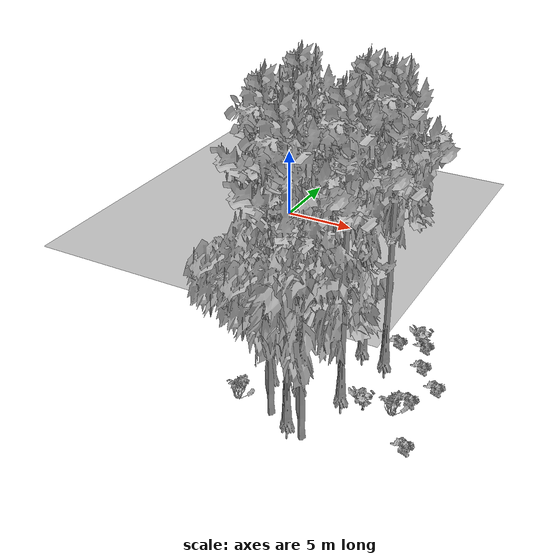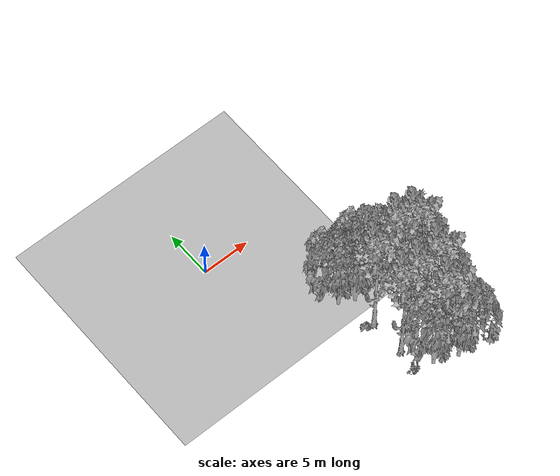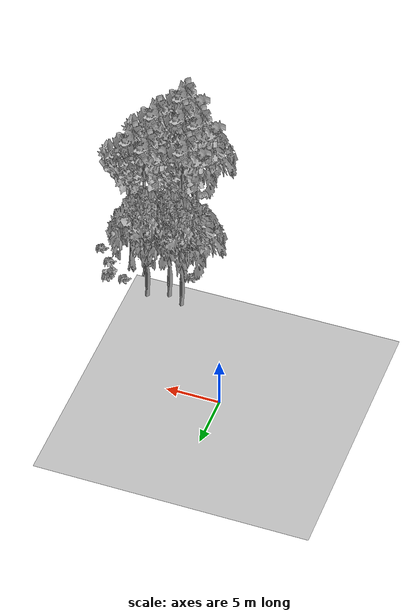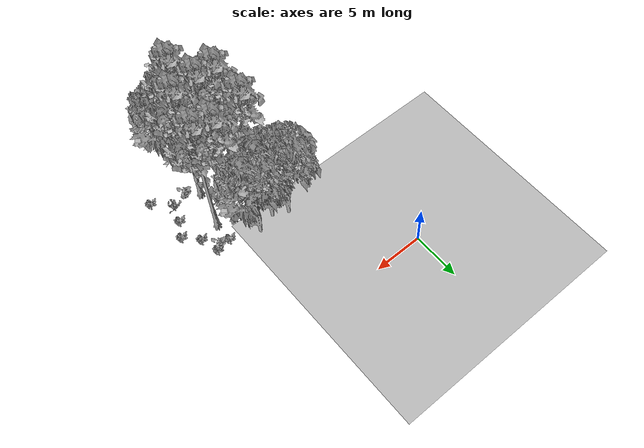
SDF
<sdf version="1.7">
 <world name="default">
  <model name="ground_plane">
   <static>1</static>
   <link name="link">
    <collision name="collision">
     <pose>-50 0 0 0 -0 0</pose>
     <geometry><plane><normal>0 0 1</normal><size>80 80</size></plane></geometry>
     <surface><contact><ode><min_depth>0.01</min_depth><max_vel>0</max_vel></ode></contact></surface>
    </collision>
    <visual name="grass">
     <cast_shadows>0</cast_shadows>
     <geometry>
      <mesh>
       <scale>0.46714285714285714 0.46714285714285714 0.1</scale>
       <uri>file://grass_plane/meshes/grass_plane.dae</uri>
      </mesh>
     </geometry>
    </visual>
   </link>
  </model>
  <model name="Tree 16">
   <static>1</static>
   <pose>12.687165125672806 -17.66942344389374 0 1.57079 -0 0</pose>
   <link name="link">
    <collision name="collision">
     <geometry><mesh><scale>3.5 5 3.5</scale><uri>model://tree_9/meshes/tree_9.obj</uri></mesh></geometry>
    </collision>
    <visual name="visual">
     <geometry><mesh><scale>3.5 5 3.5</scale><uri>model://tree_9/meshes/tree_9.obj</uri></mesh></geometry>
    </visual>
   </link>
  </model>
  <model name="Tree 209">
   <static>1</static>
   <pose>11.93722008984237 -13.229632167706498 0 1.57079 -0 0</pose>
   <link name="link">
    <collision name="collision">
     <geometry><mesh><scale>3.5 5 3.5</scale><uri>model://tree_9/meshes/tree_9.obj</uri></mesh></geometry>
    </collision>
    <visual name="visual">
     <geometry><mesh><scale>3.5 5 3.5</scale><uri>model://tree_9/meshes/tree_9.obj</uri></mesh></geometry>
    </visual>
   </link>
  </model>
  <model name="Tree 249">
   <static>1</static>
   <pose>10.661491786678525 -10.463675174857539 0 1.57079 -0 0</pose>
   <link name="link">
    <collision name="collision">
     <geometry><mesh><scale>3.5 5 3.5</scale><uri>model://tree_2/meshes/tree_2.obj</uri></mesh></geometry>
    </collision>
    <visual name="visual">
     <geometry><mesh><scale>3.5 5 3.5</scale><uri>model://tree_2/meshes/tree_2.obj</uri></mesh></geometry>
    </visual>
   </link>
  </model>
  <model name="Tree 303">
   <static>1</static>
   <pose>13.516086859390178 -13.722265868476207 0 1.57079 -0 0</pose>
   <link name="link">
    <collision name="collision">
     <geometry><mesh><scale>3.5 5 3.5</scale><uri>model://tree_9/meshes/tree_9.obj</uri></mesh></geometry>
    </collision>
    <visual name="visual">
     <geometry><mesh><scale>3.5 5 3.5</scale><uri>model://tree_9/meshes/tree_9.obj</uri></mesh></geometry>
    </visual>
   </link>
  </model>
  <model name="Tree 325">
   <static>1</static>
   <pose>8.557899977431752 -14.093027241038616 0 1.57079 -0 0</pose>
   <link name="link">
    <collision name="collision">
     <geometry><mesh><scale>3.5 5 3.5</scale><uri>model://tree_9/meshes/tree_9.obj</uri></mesh></geometry>
    </collision>
    <visual name="visual">
     <geometry><mesh><scale>3.5 5 3.5</scale><uri>model://tree_9/meshes/tree_9.obj</uri></mesh></geometry>
    </visual>
   </link>
  </model>
  <model name="Tree 330">
   <static>1</static>
   <pose>7.306173403852831 -10.393064839520338 0 1.57079 -0 0</pose>
   <link name="link">
    <collision name="collision">
     <geometry><mesh><scale>3.5 5 3.5</scale><uri>model://tree_2/meshes/tree_2.obj</uri></mesh></geometry>
    </collision>
    <visual name="visual">
     <geometry><mesh><scale>3.5 5 3.5</scale><uri>model://tree_2/meshes/tree_2.obj</uri></mesh></geometry>
    </visual>
   </link>
  </model>
  <model name="Tree 353">
   <static>1</static>
   <pose>11.124180043707774 -20.773725358883112 0 1.57079 -0 0</pose>
   <link name="link">
    <collision name="collision">
     <geometry><mesh><scale>3.5 5 3.5</scale><uri>model://tree_9/meshes/tree_9.obj</uri></mesh></geometry>
    </collision>
    <visual name="visual">
     <geometry><mesh><scale>3.5 5 3.5</scale><uri>model://tree_9/meshes/tree_9.obj</uri></mesh></geometry>
    </visual>
   </link>
  </model>
  <model name="Tree 378">
   <static>1</static>
   <pose>9.995095583472008 -20.60422796896428 0 1.57079 -0 0</pose>
   <link name="link">
    <collision name="collision">
     <geometry><mesh><scale>3.5 5 3.5</scale><uri>model://tree_2/meshes/tree_2.obj</uri></mesh></geometry>
    </collision>
    <visual name="visual">
     <geometry><mesh><scale>3.5 5 3.5</scale><uri>model://tree_2/meshes/tree_2.obj</uri></mesh></geometry>
    </visual>
   </link>
  </model>
  <model name="Tree 511">
   <static>1</static>
   <pose>8.747850615792963 -11.097648183531355 0 1.57079 -0 0</pose>
   <link name="link">
    <collision name="collision">
     <geometry><mesh><scale>3.5 5 3.5</scale><uri>model://tree_2/meshes/tree_2.obj</uri></mesh></geometry>
    </collision>
    <visual name="visual">
     <geometry><mesh><scale>3.5 5 3.5</scale><uri>model://tree_2/meshes/tree_2.obj</uri></mesh></geometry>
    </visual>
   </link>
  </model>
  <model name="Tree 529">
   <static>1</static>
   <pose>10.308509868735577 -17.909547188869183 0 1.57079 -0 0</pose>
   <link name="link">
    <collision name="collision">
     <geometry><mesh><scale>3.5 5 3.5</scale><uri>model://tree_9/meshes/tree_9.obj</uri></mesh></geometry>
    </collision>
    <visual name="visual">
     <geometry><mesh><scale>3.5 5 3.5</scale><uri>model://tree_9/meshes/tree_9.obj</uri></mesh></geometry>
    </visual>
   </link>
  </model>
  <model name="Tree 578">
   <static>1</static>
   <pose>8.575050120613845 -17.823424903198728 0 1.57079 -0 0</pose>
   <link name="link">
    <collision name="collision">
     <geometry><mesh><scale>3.5 5 3.5</scale><uri>model://tree_9/meshes/tree_9.obj</uri></mesh></geometry>
    </collision>
    <visual name="visual">
     <geometry><mesh><scale>3.5 5 3.5</scale><uri>model://tree_9/meshes/tree_9.obj</uri></mesh></geometry>
    </visual>
   </link>
  </model>
  <model name="Tree 619">
   <static>1</static>
   <pose>12.252668709215534 -21.530637288971455 0 1.57079 -0 0</pose>
   <link name="link">
    <collision name="collision">
     <geometry><mesh><scale>3.5 5 3.5</scale><uri>model://tree_2/meshes/tree_2.obj</uri></mesh></geometry>
    </collision>
    <visual name="visual">
     <geometry><mesh><scale>3.5 5 3.5</scale><uri>model://tree_2/meshes/tree_2.obj</uri></mesh></geometry>
    </visual>
   </link>
  </model>
  <model name="Bush 132">
   <static>1</static>
   <pose>7.6484770296041376 -13.932969627965448 0 1.57079 -0 0</pose>
   <link name="link">
    <collision name="collision">
     <geometry><mesh><scale>2 2 2</scale><uri>model://bush_2/meshes/bush_2.obj</uri></mesh></geometry>
     <surface><contact><collide_without_contact>false</collide_without_contact></contact></surface>
    </collision>
    <visual name="visual">
     <geometry><mesh><scale>2 2 2</scale><uri>model://bush_2/meshes/bush_2.obj</uri></mesh></geometry>
    </visual>
   </link>
  </model>
  <model name="Bush 201">
   <static>1</static>
   <pose>16.883609555556752 -14.732224660559822 0 1.57079 -0 0</pose>
   <link name="link">
    <collision name="collision">
     <geometry><mesh><scale>2 2 2</scale><uri>model://bush_2/meshes/bush_2.obj</uri></mesh></geometry>
     <surface><contact><collide_without_contact>false</collide_without_contact></contact></surface>
    </collision>
    <visual name="visual">
     <geometry><mesh><scale>2 2 2</scale><uri>model://bush_2/meshes/bush_2.obj</uri></mesh></geometry>
    </visual>
   </link>
  </model>
  <model name="Bush 245">
   <static>1</static>
   <pose>7.9682623417914655 -20.330235159011387 0 1.57079 -0 0</pose>
   <link name="link">
    <collision name="collision">
     <geometry><mesh><scale>2 2 2</scale><uri>model://bush_4/meshes/bush_4.obj</uri></mesh></geometry>
     <surface><contact><collide_without_contact>false</collide_without_contact></contact></surface>
    </collision>
    <visual name="visual">
     <geometry><mesh><scale>2 2 2</scale><uri>model://bush_4/meshes/bush_4.obj</uri></mesh></geometry>
    </visual>
   </link>
  </model>
  <model name="Bush 248">
   <static>1</static>
   <pose>13.481307568456131 -11.65434177451301 0 1.57079 -0 0</pose>
   <link name="link">
    <collision name="collision">
     <geometry><mesh><scale>2 2 2</scale><uri>model://bush_2/meshes/bush_2.obj</uri></mesh></geometry>
     <surface><contact><collide_without_contact>false</collide_without_contact></contact></surface>
    </collision>
    <visual name="visual">
     <geometry><mesh><scale>2 2 2</scale><uri>model://bush_2/meshes/bush_2.obj</uri></mesh></geometry>
    </visual>
   </link>
  </model>
  <model name="Bush 421">
   <static>1</static>
   <pose>14.152160223225728 -18.094039722709816 0 1.57079 -0 0</pose>
   <link name="link">
    <collision name="collision">
     <geometry><mesh><scale>2 2 2</scale><uri>model://bush_0/meshes/bush_0.obj</uri></mesh></geometry>
     <surface><contact><collide_without_contact>false</collide_without_contact></contact></surface>
    </collision>
    <visual name="visual">
     <geometry><mesh><scale>2 2 2</scale><uri>model://bush_0/meshes/bush_0.obj</uri></mesh></geometry>
    </visual>
   </link>
  </model>
  <model name="Bush 497">
   <static>1</static>
   <pose>15.628937277438823 -17.738959666961893 0 1.57079 -0 0</pose>
   <link name="link">
    <collision name="collision">
     <geometry><mesh><scale>2 2 2</scale><uri>model://bush_4/meshes/bush_4.obj</uri></mesh></geometry>
     <surface><contact><collide_without_contact>false</collide_without_contact></contact></surface>
    </collision>
    <visual name="visual">
     <geometry><mesh><scale>2 2 2</scale><uri>model://bush_4/meshes/bush_4.obj</uri></mesh></geometry>
    </visual>
   </link>
  </model>
  <model name="Bush 528">
   <static>1</static>
   <pose>14.858914960334289 -11.34703978647699 0 1.57079 -0 0</pose>
   <link name="link">
    <collision name="collision">
     <geometry><mesh><scale>2 2 2</scale><uri>model://bush_0/meshes/bush_0.obj</uri></mesh></geometry>
     <surface><contact><collide_without_contact>false</collide_without_contact></contact></surface>
    </collision>
    <visual name="visual">
     <geometry><mesh><scale>2 2 2</scale><uri>model://bush_0/meshes/bush_0.obj</uri></mesh></geometry>
    </visual>
   </link>
  </model>
  <model name="Bush 561">
   <static>1</static>
   <pose>16.009205767746273 -16.349491378137753 0 1.57079 -0 0</pose>
   <link name="link">
    <collision name="collision">
     <geometry><mesh><scale>2 2 2</scale><uri>model://bush_2/meshes/bush_2.obj</uri></mesh></geometry>
     <surface><contact><collide_without_contact>false</collide_without_contact></contact></surface>
    </collision>
    <visual name="visual">
     <geometry><mesh><scale>2 2 2</scale><uri>model://bush_2/meshes/bush_2.obj</uri></mesh></geometry>
    </visual>
   </link>
  </model>
  <model name="Bush 575">
   <static>1</static>
   <pose>15.561461005441352 -13.309736731560644 0 1.57079 -0 0</pose>
   <link name="link">
    <collision name="collision">
     <geometry><mesh><scale>2 2 2</scale><uri>model://bush_2/meshes/bush_2.obj</uri></mesh></geometry>
     <surface><contact><collide_without_contact>false</collide_without_contact></contact></surface>
    </collision>
    <visual name="visual">
     <geometry><mesh><scale>2 2 2</scale><uri>model://bush_2/meshes/bush_2.obj</uri></mesh></geometry>
    </visual>
   </link>
  </model>
  <model name="Bush 607">
   <static>1</static>
   <pose>17.083873554807212 -19.782805112923995 0 1.57079 -0 0</pose>
   <link name="link">
    <collision name="collision">
     <geometry><mesh><scale>2 2 2</scale><uri>model://bush_2/meshes/bush_2.obj</uri></mesh></geometry>
     <surface><contact><collide_without_contact>false</collide_without_contact></contact></surface>
    </collision>
    <visual name="visual">
     <geometry><mesh><scale>2 2 2</scale><uri>model://bush_2/meshes/bush_2.obj</uri></mesh></geometry>
    </visual>
   </link>
  </model>
  <model name="Bush 612">
   <static>1</static>
   <pose>15.018482312611816 -11.400288228373093 0 1.57079 -0 0</pose>
   <link name="link">
    <collision name="collision">
     <geometry><mesh><scale>2 2 2</scale><uri>model://bush_2/meshes/bush_2.obj</uri></mesh></geometry>
     <surface><contact><collide_without_contact>false</collide_without_contact></contact></surface>
    </collision>
    <visual name="visual">
     <geometry><mesh><scale>2 2 2</scale><uri>model://bush_2/meshes/bush_2.obj</uri></mesh></geometry>
    </visual>
   </link>
  </model>
 </world>
</sdf>
